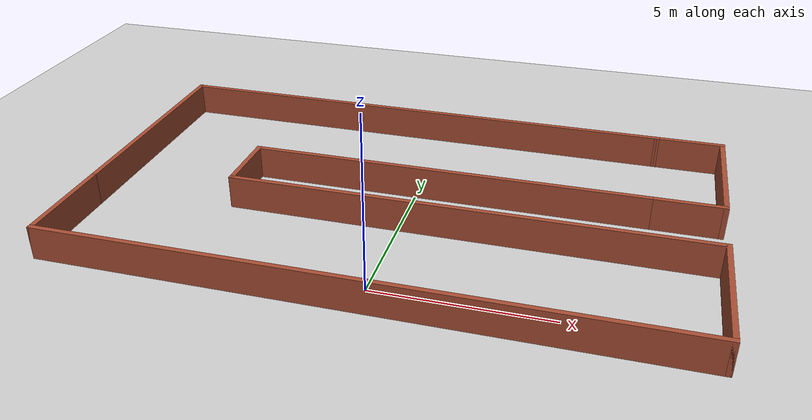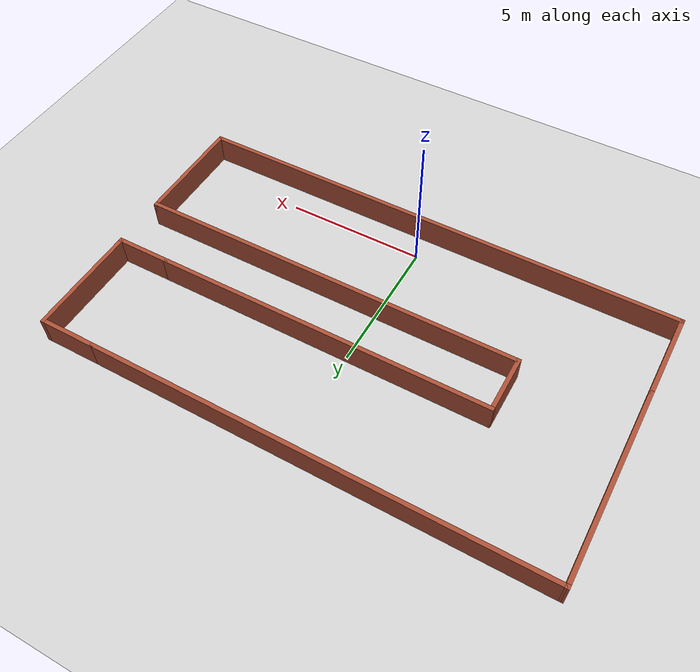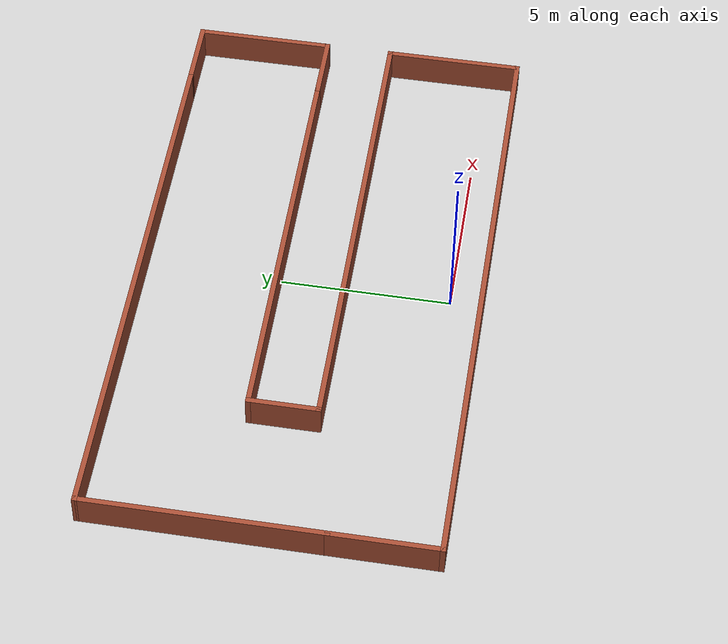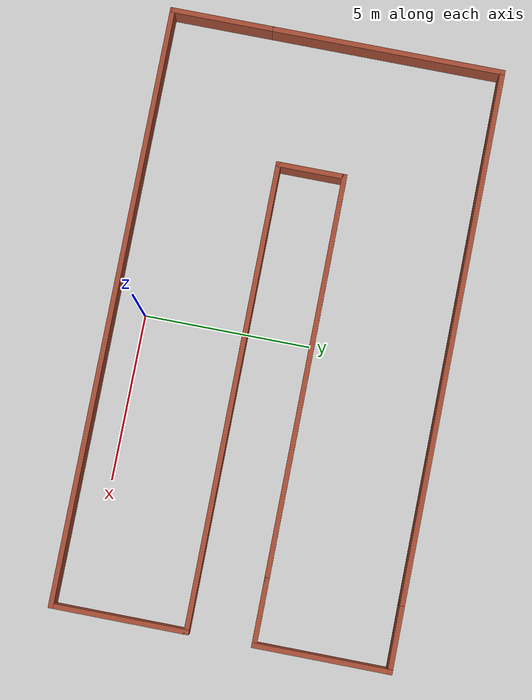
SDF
<sdf version="1.7">
 <world name="default">
  <light name="sun" type="directional">
   <pose>0 0 10 0 -0 0</pose>
   <diffuse>0.8 0.8 0.8 1</diffuse>
   <specular>0.2 0.2 0.2 1</specular>
   <attenuation>
    <range>1000</range>
    <constant>0.9</constant>
    <linear>0.01</linear>
    <quadratic>0.001</quadratic>
   </attenuation>
   <direction>-0.5 0.1 -0.9</direction>
   <spot><inner_angle>0</inner_angle><outer_angle>0</outer_angle><falloff>0</falloff></spot>
  </light>
  <model name="ground_plane">
   <static>1</static>
   <link name="link">
    <collision name="collision">
     <geometry><plane><normal>0 0 1</normal><size>100 100</size></plane></geometry>
     <surface>
      <contact><collide_bitmask>65535</collide_bitmask></contact>
      <friction><ode><mu>100</mu><mu2>50</mu2></ode></friction>
     </surface>
    </collision>
    <visual name="visual">
     <cast_shadows>0</cast_shadows>
     <geometry><plane><normal>0 0 1</normal><size>100 100</size></plane></geometry>
     <material>
      <script><uri>file://media/materials/scripts/gazebo.material</uri><name>Gazebo/Grey</name></script>
     </material>
    </visual>
   </link>
  </model>
  <gravity>0 0 -9.8</gravity>
  <magnetic_field>6e-06 2.3e-05 -4.2e-05</magnetic_field>
  <atmosphere type="adiabatic"/>
  <physics type="ode">
   <max_step_size>0.001</max_step_size>
   <real_time_factor>1</real_time_factor>
   <real_time_update_rate>1000</real_time_update_rate>
  </physics>
  <scene><ambient>0.4 0.4 0.4 1</ambient><background>0.7 0.7 0.7 1</background><shadows>1</shadows></scene>
  <audio><device>default</device></audio>
  <spherical_coordinates>
   <surface_model>EARTH_WGS84</surface_model>
   <latitude_deg>0</latitude_deg>
   <longitude_deg>0</longitude_deg>
   <elevation>0</elevation>
   <heading_deg>0</heading_deg>
  </spherical_coordinates>
  <model name="basic_track">
   <pose>-0.088774 4.09651 0 0 -0 0</pose>
   <link name="Wall_0">
    <collision name="Wall_0_Collision">
     <geometry><box><size>18.15 0.15 1</size></box></geometry>
     <pose>0 0 0.5 0 -0 0</pose>
    </collision>
    <visual name="Wall_0_Visual">
     <pose>0 0 0.5 0 -0 0</pose>
     <geometry><box><size>18.15 0.15 1</size></box></geometry>
     <material>
      <script><uri>file://media/materials/scripts/gazebo.material</uri><name>Gazebo/Bricks</name></script>
      <ambient>1 1 1 1</ambient>
     </material>
     <meta><layer>0</layer></meta>
    </visual>
    <pose>9.1e-05 -5.02311 0 0 -0 0</pose>
   </link>
   <link name="Wall_12">
    <collision name="Wall_12_Collision">
     <geometry><box><size>12.241 0.15 1</size></box></geometry>
     <pose>0 0 0.5 0 -0 0</pose>
    </collision>
    <visual name="Wall_12_Visual">
     <pose>0 0 0.5 0 -0 0</pose>
     <geometry><box><size>12.241 0.15 1</size></box></geometry>
     <material>
      <script><uri>file://media/materials/scripts/gazebo.material</uri><name>Gazebo/Bricks</name></script>
      <ambient>1 1 1 1</ambient>
     </material>
     <meta><layer>0</layer></meta>
    </visual>
    <pose>1.04559 0.976893 0 0 -0 0</pose>
   </link>
   <link name="Wall_14">
    <collision name="Wall_14_Collision">
     <geometry><box><size>2.15 0.15 1</size></box></geometry>
     <pose>0 0 0.5 0 -0 0</pose>
    </collision>
    <visual name="Wall_14_Visual">
     <pose>0 0 0.5 0 -0 0</pose>
     <geometry><box><size>2.15 0.15 1</size></box></geometry>
     <material>
      <script><uri>file://media/materials/scripts/gazebo.material</uri><name>Gazebo/Bricks</name></script>
      <ambient>1 1 1 1</ambient>
     </material>
     <meta><layer>0</layer></meta>
    </visual>
    <pose>-4.99991 -0.023107 0 0 -0 -1.5708</pose>
   </link>
   <link name="Wall_16">
    <collision name="Wall_16_Collision">
     <geometry><box><size>2.059 0.15 1</size></box></geometry>
     <pose>0 0 0.5 0 -0 0</pose>
    </collision>
    <visual name="Wall_16_Visual">
     <pose>0 0 0.5 0 -0 0</pose>
     <geometry><box><size>2.059 0.15 1</size></box></geometry>
     <material>
      <script><uri>file://media/materials/scripts/gazebo.material</uri><name>Gazebo/Bricks</name></script>
      <ambient>1 1 1 1</ambient>
     </material>
     <meta><layer>0</layer></meta>
    </visual>
    <pose>8.04559 0.976893 0 0 -0 0</pose>
   </link>
   <link name="Wall_17">
    <collision name="Wall_17_Collision">
     <geometry><box><size>4.15 0.15 1</size></box></geometry>
     <pose>0 0 0.5 0 -0 0</pose>
    </collision>
    <visual name="Wall_17_Visual">
     <pose>0 0 0.5 0 -0 0</pose>
     <geometry><box><size>4.15 0.15 1</size></box></geometry>
     <material>
      <script><uri>file://media/materials/scripts/gazebo.material</uri><name>Gazebo/Bricks</name></script>
      <ambient>1 1 1 1</ambient>
     </material>
     <meta><layer>0</layer></meta>
    </visual>
    <pose>9.00009 2.97689 0 0 -0 1.5708</pose>
   </link>
   <link name="Wall_18">
    <collision name="Wall_18_Collision">
     <geometry><box><size>2.15 0.15 1</size></box></geometry>
     <pose>0 0 0.5 0 -0 0</pose>
    </collision>
    <visual name="Wall_18_Visual">
     <pose>0 0 0.5 0 -0 0</pose>
     <geometry><box><size>2.15 0.15 1</size></box></geometry>
     <material>
      <script><uri>file://media/materials/scripts/gazebo.material</uri><name>Gazebo/Bricks</name></script>
      <ambient>1 1 1 1</ambient>
     </material>
     <meta><layer>0</layer></meta>
    </visual>
    <pose>8.00009 4.97689 0 0 -0 3.14159</pose>
   </link>
   <link name="Wall_2">
    <collision name="Wall_2_Collision">
     <geometry><box><size>3.273 0.15 1</size></box></geometry>
     <pose>0 0 0.5 0 -0 0</pose>
    </collision>
    <visual name="Wall_2_Visual">
     <pose>0 0 0.5 0 -0 0</pose>
     <geometry><box><size>3.273 0.15 1</size></box></geometry>
     <material>
      <script><uri>file://media/materials/scripts/gazebo.material</uri><name>Gazebo/Bricks</name></script>
      <ambient>1 1 1 1</ambient>
     </material>
     <meta><layer>0</layer></meta>
    </visual>
    <pose>-8.99991 -3.46161 0 0 -0 1.5708</pose>
   </link>
   <link name="Wall_20">
    <collision name="Wall_20_Collision">
     <geometry><box><size>4.15 0.15 1</size></box></geometry>
     <pose>0 0 0.5 0 -0 0</pose>
    </collision>
    <visual name="Wall_20_Visual">
     <pose>0 0 0.5 0 -0 0</pose>
     <geometry><box><size>4.15 0.15 1</size></box></geometry>
     <material>
      <script><uri>file://media/materials/scripts/gazebo.material</uri><name>Gazebo/Bricks</name></script>
      <ambient>1 1 1 1</ambient>
     </material>
     <meta><layer>0</layer></meta>
    </visual>
    <pose>9.00009 -3.02311 0 0 -0 1.5708</pose>
   </link>
   <link name="Wall_4">
    <collision name="Wall_4_Collision">
     <geometry><box><size>7.073 0.15 1</size></box></geometry>
     <pose>0 0 0.5 0 -0 0</pose>
    </collision>
    <visual name="Wall_4_Visual">
     <pose>0 0 0.5 0 -0 0</pose>
     <geometry><box><size>7.073 0.15 1</size></box></geometry>
     <material>
      <script><uri>file://media/materials/scripts/gazebo.material</uri><name>Gazebo/Bricks</name></script>
      <ambient>1 1 1 1</ambient>
     </material>
     <meta><layer>0</layer></meta>
    </visual>
    <pose>-8.99991 1.56139 0 0 -0 1.5708</pose>
   </link>
   <link name="Wall_5">
    <collision name="Wall_5_Collision">
     <geometry><box><size>16.15 0.15 1</size></box></geometry>
     <pose>0 0 0.5 0 -0 0</pose>
    </collision>
    <visual name="Wall_5_Visual">
     <pose>0 0 0.5 0 -0 0</pose>
     <geometry><box><size>16.15 0.15 1</size></box></geometry>
     <material>
      <script><uri>file://media/materials/scripts/gazebo.material</uri><name>Gazebo/Bricks</name></script>
      <ambient>1 1 1 1</ambient>
     </material>
     <meta><layer>0</layer></meta>
    </visual>
    <pose>-0.999909 4.99989 0 0 -0 -0.002875</pose>
   </link>
   <link name="Wall_8">
    <collision name="Wall_8_Collision">
     <geometry><box><size>14.15 0.15 1</size></box></geometry>
     <pose>0 0 0.5 0 -0 0</pose>
    </collision>
    <visual name="Wall_8_Visual">
     <pose>0 0 0.5 0 -0 0</pose>
     <geometry><box><size>14.15 0.15 1</size></box></geometry>
     <material>
      <script><uri>file://media/materials/scripts/gazebo.material</uri><name>Gazebo/Bricks</name></script>
      <ambient>1 1 1 1</ambient>
     </material>
     <meta><layer>0</layer></meta>
    </visual>
    <pose>2.00009 -1.02311 0 0 -0 0</pose>
   </link>
   <static>1</static>
  </model>
 </world>
</sdf>
